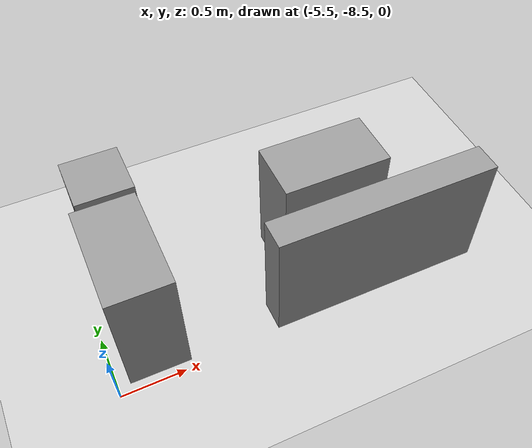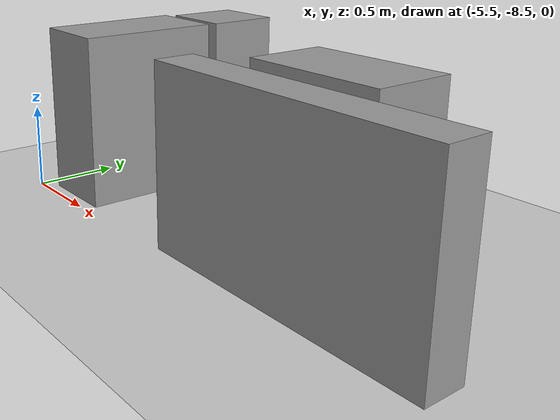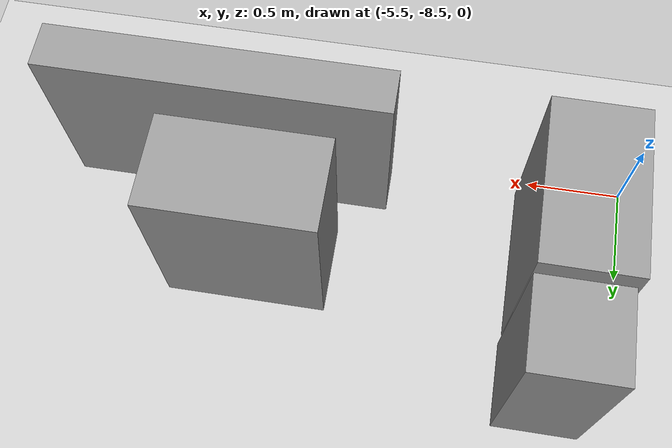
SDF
<sdf version="1.9">
 <world name="default">
  <model name="ground_plane">
   <static>true</static>
   <link name="link">
    <collision name="collision">
     <geometry><plane><normal>0 0 1</normal><size>100 100</size></plane></geometry>
     <surface><friction><ode><mu>100</mu><mu2>50</mu2></ode></friction></surface>
    </collision>
    <visual name="visual">
     <cast_shadows>false</cast_shadows>
     <geometry><plane><normal>0 0 1</normal><size>100 100</size></plane></geometry>
     <material>
      <script><uri>file://media/materials/scripts/gazebo.material</uri><name>Gazebo/Grey</name></script>
     </material>
    </visual>
   </link>
  </model>
  <model name="cma_armario_s_0">
   <link name="link_1">
    <pose>-1.9999999999999999e-06 -3.0000000000000001e-06 0 0 0 0</pose>
    <inertial>
     <mass>0.39015899999999998</mass>
     <inertia>
      <ixx>0.039647000000000002</ixx>
      <ixy>0</ixy>
      <ixz>0</ixz>
      <iyy>0.055070800000000003</iyy>
      <iyz>0</iyz>
      <izz>0.029691200000000001</izz>
     </inertia>
    </inertial>
    <visual name="visual">
     <geometry><box><size>0.83294199999999996 0.46839700000000001 1</size></box></geometry>
     <material>
      <lighting>true</lighting>
      <script><uri>file://media/materials/scripts/gazebo.material</uri><name>Gazebo/Grey</name></script>
      <ambient>0.300000012 0.300000012 0.300000012 1</ambient>
      <diffuse>0.699999988 0.699999988 0.699999988 1</diffuse>
      <specular>0.00999999978 0.00999999978 0.00999999978 1</specular>
      <emissive>0 0 0 1</emissive>
     </material>
    </visual>
    <collision name="collision">
     <geometry><box><size>0.83294199999999996 0.46839700000000001 1</size></box></geometry>
     <surface>
      <friction>
       <ode><mu>1</mu><mu2>1</mu2><fdir1>0 0 0</fdir1><slip1>0</slip1><slip2>0</slip2></ode>
       <torsional>
        <coefficient>1</coefficient>
        <patch_radius>0</patch_radius>
        <surface_radius>0</surface_radius>
        <use_patch_radius>true</use_patch_radius>
        <ode><slip>0</slip></ode>
       </torsional>
      </friction>
      <bounce><restitution_coefficient>0</restitution_coefficient><threshold>1000000</threshold></bounce>
      <contact>
       <collide_without_contact>false</collide_without_contact>
       <collide_without_contact_bitmask>1</collide_without_contact_bitmask>
       <collide_bitmask>1</collide_bitmask>
       <ode>
        <soft_cfm>0</soft_cfm>
        <soft_erp>0.20000000000000001</soft_erp>
        <kp>10000000000000</kp>
        <kd>1</kd>
        <max_vel>0.01</max_vel>
        <min_depth>0</min_depth>
       </ode>
       <bullet>
        <split_impulse>true</split_impulse>
        <split_impulse_penetration_threshold>-0.01</split_impulse_penetration_threshold>
        <soft_cfm>0</soft_cfm>
        <soft_erp>0.20000000000000001</soft_erp>
        <kp>10000000000000</kp>
        <kd>1</kd>
       </bullet>
      </contact>
     </surface>
    </collision>
   </link>
   <static>false</static>
   <pose>-5.1684299999999999 -8.0155399999999997 0.5 -3.9999999999999998e-06 3.0000000000000001e-06 -1.57497</pose>
  </model>
  <model name="cma_gaveteiro_pequeno_2">
   <link name="link_0">
    <pose>0.25617400000000001 1.2505500000000001 0.5 0 0 0</pose>
    <inertial>
     <mass>0.18718599999999999</mass>
     <inertia>
      <ixx>0.018509999999999999</ixx>
      <ixy>0</ixy>
      <ixz>0</ixz>
      <iyy>0.018527600000000002</iyy>
      <iyz>0</iyz>
      <izz>0.00583981</izz>
     </inertia>
    </inertial>
    <visual name="visual">
     <geometry><box><size>0.43331700000000001 0.432002 1</size></box></geometry>
     <material>
      <lighting>true</lighting>
      <script><uri>file://media/materials/scripts/gazebo.material</uri><name>Gazebo/Grey</name></script>
      <ambient>0.300000012 0.300000012 0.300000012 1</ambient>
      <diffuse>0.699999988 0.699999988 0.699999988 1</diffuse>
      <specular>0.00999999978 0.00999999978 0.00999999978 1</specular>
      <emissive>0 0 0 1</emissive>
     </material>
    </visual>
    <collision name="collision">
     <geometry><box><size>0.43331700000000001 0.432002 1</size></box></geometry>
     <surface>
      <friction>
       <ode><mu>1</mu><mu2>1</mu2><fdir1>0 0 0</fdir1><slip1>0</slip1><slip2>0</slip2></ode>
       <torsional>
        <coefficient>1</coefficient>
        <patch_radius>0</patch_radius>
        <surface_radius>0</surface_radius>
        <use_patch_radius>true</use_patch_radius>
        <ode><slip>0</slip></ode>
       </torsional>
      </friction>
      <bounce><restitution_coefficient>0</restitution_coefficient><threshold>1000000</threshold></bounce>
      <contact>
       <collide_without_contact>false</collide_without_contact>
       <collide_without_contact_bitmask>1</collide_without_contact_bitmask>
       <collide_bitmask>1</collide_bitmask>
       <ode>
        <soft_cfm>0</soft_cfm>
        <soft_erp>0.20000000000000001</soft_erp>
        <kp>10000000000000</kp>
        <kd>1</kd>
        <max_vel>0.01</max_vel>
        <min_depth>0</min_depth>
       </ode>
       <bullet>
        <split_impulse>true</split_impulse>
        <split_impulse_penetration_threshold>-0.01</split_impulse_penetration_threshold>
        <soft_cfm>0</soft_cfm>
        <soft_erp>0.20000000000000001</soft_erp>
        <kp>10000000000000</kp>
        <kd>1</kd>
       </bullet>
      </contact>
     </surface>
    </collision>
   </link>
   <static>false</static>
   <pose>-5.3916300000000001 -8.5855200000000007 1.9999999999999999e-06 -2.9999999999999997e-06 -3.0000000000000009e-06 -3.8000000000000009e-05</pose>
  </model>
  <model name="cma_armario_s_1">
   <link name="link_1">
    <pose>-1.9999999999999999e-06 -3.0000000000000001e-06 0 0 0 0</pose>
    <inertial>
     <mass>0.39015899999999998</mass>
     <inertia>
      <ixx>0.039647000000000002</ixx>
      <ixy>0</ixy>
      <ixz>0</ixz>
      <iyy>0.055070800000000003</iyy>
      <iyz>0</iyz>
      <izz>0.029691200000000001</izz>
     </inertia>
    </inertial>
    <visual name="visual">
     <geometry><box><size>0.83294199999999996 0.46839700000000001 1</size></box></geometry>
     <material>
      <lighting>true</lighting>
      <script><uri>file://media/materials/scripts/gazebo.material</uri><name>Gazebo/Grey</name></script>
      <ambient>0.300000012 0.300000012 0.300000012 1</ambient>
      <diffuse>0.699999988 0.699999988 0.699999988 1</diffuse>
      <specular>0.00999999978 0.00999999978 0.00999999978 1</specular>
      <emissive>0 0 0 1</emissive>
     </material>
    </visual>
    <collision name="collision">
     <geometry><box><size>0.83294199999999996 0.46839700000000001 1</size></box></geometry>
     <surface>
      <friction>
       <ode><mu>1</mu><mu2>1</mu2><fdir1>0 0 0</fdir1><slip1>0</slip1><slip2>0</slip2></ode>
       <torsional>
        <coefficient>1</coefficient>
        <patch_radius>0</patch_radius>
        <surface_radius>0</surface_radius>
        <use_patch_radius>true</use_patch_radius>
        <ode><slip>0</slip></ode>
       </torsional>
      </friction>
      <bounce><restitution_coefficient>0</restitution_coefficient><threshold>1000000</threshold></bounce>
      <contact>
       <collide_without_contact>false</collide_without_contact>
       <collide_without_contact_bitmask>1</collide_without_contact_bitmask>
       <collide_bitmask>1</collide_bitmask>
       <ode>
        <soft_cfm>0</soft_cfm>
        <soft_erp>0.20000000000000001</soft_erp>
        <kp>10000000000000</kp>
        <kd>1</kd>
        <max_vel>0.01</max_vel>
        <min_depth>0</min_depth>
       </ode>
       <bullet>
        <split_impulse>true</split_impulse>
        <split_impulse_penetration_threshold>-0.01</split_impulse_penetration_threshold>
        <soft_cfm>0</soft_cfm>
        <soft_erp>0.20000000000000001</soft_erp>
        <kp>10000000000000</kp>
        <kd>1</kd>
       </bullet>
      </contact>
     </surface>
    </collision>
   </link>
   <static>false</static>
   <pose>-3.5794999999999999 -7.8237699999999997 0.5 0 0 0.00027500000000000002</pose>
  </model>
  <model name="cma_armario_1">
   <link name="link_0">
    <pose>1.3215699999999999 0.88517800000000002 0.5 0 0 0</pose>
    <inertial>
     <mass>0.40237600000000001</mass>
     <inertia>
      <ixx>0.0353686</ixx>
      <ixy>0</ixy>
      <ixz>0</ixz>
      <iyy>0.13261600000000001</iyy>
      <iyz>0</iyz>
      <izz>0.100922</izz>
     </inertia>
    </inertial>
    <visual name="visual">
     <geometry><box><size>1.7187699999999999 0.234069 1</size></box></geometry>
     <material>
      <lighting>true</lighting>
      <script><uri>file://media/materials/scripts/gazebo.material</uri><name>Gazebo/Grey</name></script>
      <ambient>0.300000012 0.300000012 0.300000012 1</ambient>
      <diffuse>0.699999988 0.699999988 0.699999988 1</diffuse>
      <specular>0.00999999978 0.00999999978 0.00999999978 1</specular>
      <emissive>0 0 0 1</emissive>
     </material>
    </visual>
    <collision name="collision">
     <geometry><box><size>1.7187699999999999 0.234069 1</size></box></geometry>
     <surface>
      <friction>
       <ode><mu>1</mu><mu2>1</mu2><fdir1>0 0 0</fdir1><slip1>0</slip1><slip2>0</slip2></ode>
       <torsional>
        <coefficient>1</coefficient>
        <patch_radius>0</patch_radius>
        <surface_radius>0</surface_radius>
        <use_patch_radius>true</use_patch_radius>
        <ode><slip>0</slip></ode>
       </torsional>
      </friction>
      <bounce><restitution_coefficient>0</restitution_coefficient><threshold>1000000</threshold></bounce>
      <contact>
       <collide_without_contact>false</collide_without_contact>
       <collide_without_contact_bitmask>1</collide_without_contact_bitmask>
       <collide_bitmask>1</collide_bitmask>
       <ode>
        <soft_cfm>0</soft_cfm>
        <soft_erp>0.20000000000000001</soft_erp>
        <kp>10000000000000</kp>
        <kd>1</kd>
        <max_vel>0.01</max_vel>
        <min_depth>0</min_depth>
       </ode>
       <bullet>
        <split_impulse>true</split_impulse>
        <split_impulse_penetration_threshold>-0.01</split_impulse_penetration_threshold>
        <soft_cfm>0</soft_cfm>
        <soft_erp>0.20000000000000001</soft_erp>
        <kp>10000000000000</kp>
        <kd>1</kd>
       </bullet>
      </contact>
     </surface>
    </collision>
   </link>
   <static>false</static>
   <pose>-4.69991 -9.2268500000000007 0 0 0 -0.00067100000000000016</pose>
  </model>
 </world>
</sdf>
